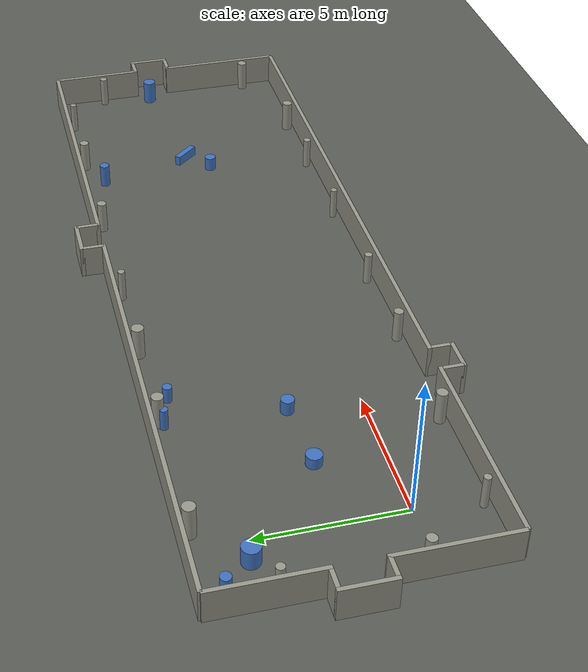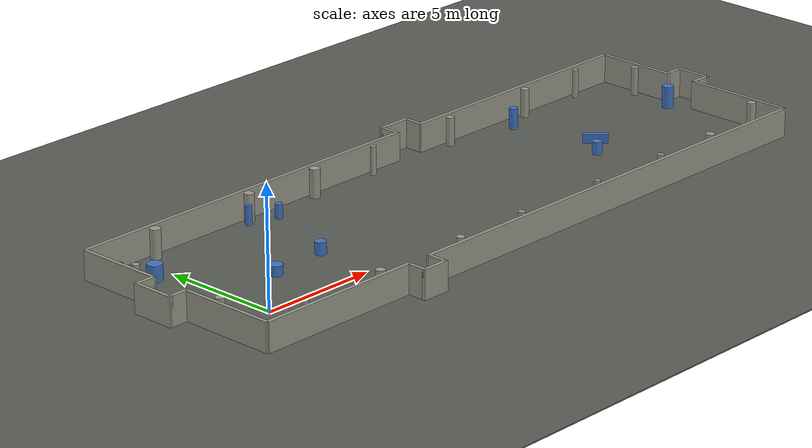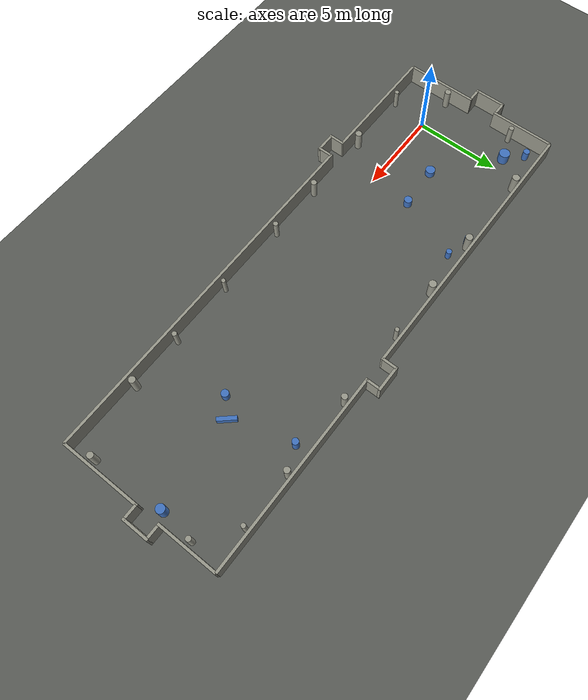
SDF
<sdf version="1.9">
 <world name="default">
  <model name="track_feature">
   <static>true</static>
   <link name="feature_link">
    <collision name="feat_box_10_collision">
     <pose>20.805922 2.577946 0.189972 0.000000 0.000000 2.290240</pose>
     <geometry><box><size>1.032700 0.225423 0.379944</size></box></geometry>
    </collision>
    <visual name="feat_box_10_visual">
     <pose>20.805922 2.577946 0.189972 0.000000 0.000000 2.290240</pose>
     <geometry><box><size>1.032700 0.225423 0.379944</size></box></geometry>
     <material><ambient>0.25 0.45 0.75 1</ambient><diffuse>0.25 0.45 0.75 1</diffuse></material>
    </visual>
    <collision name="feat_cyl_1_collision">
     <pose>5.095583 2.484080 0.261773 0.000000 0.000000 0.000000</pose>
     <geometry><cylinder><radius>0.228690</radius><length>0.523547</length></cylinder></geometry>
    </collision>
    <visual name="feat_cyl_1_visual">
     <pose>5.095583 2.484080 0.261773 0.000000 0.000000 0.000000</pose>
     <geometry><cylinder><radius>0.228690</radius><length>0.523547</length></cylinder></geometry>
     <material><ambient>0.25 0.45 0.75 1</ambient><diffuse>0.25 0.45 0.75 1</diffuse></material>
    </visual>
    <collision name="feat_cyl_2_collision">
     <pose>19.747150 6.061025 0.442172 0.000000 0.000000 0.000000</pose>
     <geometry><cylinder><radius>0.181366</radius><length>0.884344</length></cylinder></geometry>
    </collision>
    <visual name="feat_cyl_2_visual">
     <pose>19.747150 6.061025 0.442172 0.000000 0.000000 0.000000</pose>
     <geometry><cylinder><radius>0.181366</radius><length>0.884344</length></cylinder></geometry>
     <material><ambient>0.25 0.45 0.75 1</ambient><diffuse>0.25 0.45 0.75 1</diffuse></material>
    </visual>
    <collision name="feat_cyl_3_collision">
     <pose>19.917322 1.719447 0.268425 0.000000 0.000000 0.000000</pose>
     <geometry><cylinder><radius>0.210090</radius><length>0.536850</length></cylinder></geometry>
    </collision>
    <visual name="feat_cyl_3_visual">
     <pose>19.917322 1.719447 0.268425 0.000000 0.000000 0.000000</pose>
     <geometry><cylinder><radius>0.210090</radius><length>0.536850</length></cylinder></geometry>
     <material><ambient>0.25 0.45 0.75 1</ambient><diffuse>0.25 0.45 0.75 1</diffuse></material>
    </visual>
    <collision name="feat_cyl_4_collision">
     <pose>-0.795670 5.149357 0.332980 0.000000 0.000000 0.000000</pose>
     <geometry><cylinder><radius>0.311442</radius><length>0.665961</length></cylinder></geometry>
    </collision>
    <visual name="feat_cyl_4_visual">
     <pose>-0.795670 5.149357 0.332980 0.000000 0.000000 0.000000</pose>
     <geometry><cylinder><radius>0.311442</radius><length>0.665961</length></cylinder></geometry>
     <material><ambient>0.25 0.45 0.75 1</ambient><diffuse>0.25 0.45 0.75 1</diffuse></material>
    </visual>
    <collision name="feat_cyl_5_collision">
     <pose>6.516177 6.145721 0.294733 0.000000 0.000000 0.000000</pose>
     <geometry><cylinder><radius>0.156200</radius><length>0.589467</length></cylinder></geometry>
    </collision>
    <visual name="feat_cyl_5_visual">
     <pose>6.516177 6.145721 0.294733 0.000000 0.000000 0.000000</pose>
     <geometry><cylinder><radius>0.156200</radius><length>0.589467</length></cylinder></geometry>
     <material><ambient>0.25 0.45 0.75 1</ambient><diffuse>0.25 0.45 0.75 1</diffuse></material>
    </visual>
    <collision name="feat_cyl_6_collision">
     <pose>2.591725 2.308717 0.205123 0.000000 0.000000 0.000000</pose>
     <geometry><cylinder><radius>0.275531</radius><length>0.410247</length></cylinder></geometry>
    </collision>
    <visual name="feat_cyl_6_visual">
     <pose>2.591725 2.308717 0.205123 0.000000 0.000000 0.000000</pose>
     <geometry><cylinder><radius>0.275531</radius><length>0.410247</length></cylinder></geometry>
     <material><ambient>0.25 0.45 0.75 1</ambient><diffuse>0.25 0.45 0.75 1</diffuse></material>
    </visual>
    <collision name="feat_cyl_7_collision">
     <pose>25.949225 3.094233 0.459818 0.000000 0.000000 0.000000</pose>
     <geometry><cylinder><radius>0.244701</radius><length>0.919635</length></cylinder></geometry>
    </collision>
    <visual name="feat_cyl_7_visual">
     <pose>25.949225 3.094233 0.459818 0.000000 0.000000 0.000000</pose>
     <geometry><cylinder><radius>0.244701</radius><length>0.919635</length></cylinder></geometry>
     <material><ambient>0.25 0.45 0.75 1</ambient><diffuse>0.25 0.45 0.75 1</diffuse></material>
    </visual>
    <collision name="feat_cyl_8_collision">
     <pose>-1.677320 6.098490 0.323803 0.000000 0.000000 0.000000</pose>
     <geometry><cylinder><radius>0.183685</radius><length>0.647605</length></cylinder></geometry>
    </collision>
    <visual name="feat_cyl_8_visual">
     <pose>-1.677320 6.098490 0.323803 0.000000 0.000000 0.000000</pose>
     <geometry><cylinder><radius>0.183685</radius><length>0.647605</length></cylinder></geometry>
     <material><ambient>0.25 0.45 0.75 1</ambient><diffuse>0.25 0.45 0.75 1</diffuse></material>
    </visual>
    <collision name="feat_cyl_9_collision">
     <pose>5.265680 6.496710 0.399092 0.000000 0.000000 0.000000</pose>
     <geometry><cylinder><radius>0.138124</radius><length>0.798185</length></cylinder></geometry>
    </collision>
    <visual name="feat_cyl_9_visual">
     <pose>5.265680 6.496710 0.399092 0.000000 0.000000 0.000000</pose>
     <geometry><cylinder><radius>0.138124</radius><length>0.798185</length></cylinder></geometry>
     <material><ambient>0.25 0.45 0.75 1</ambient><diffuse>0.25 0.45 0.75 1</diffuse></material>
    </visual>
   </link>
  </model>
  <model name="track_ground">
   <static>true</static>
   <link name="ground_link">
    <collision name="ground_collision">
     <pose>12.000000 2.250000 -0.025000 0.000000 0.000000 0.000000</pose>
     <geometry><box><size>80.000000 80.000000 0.050000</size></box></geometry>
     <surface>
      <friction><ode><mu>1.2</mu><mu2>1.2</mu2></ode></friction>
      <contact><ode><kp>100000.0</kp><kd>10.0</kd></ode></contact>
     </surface>
    </collision>
    <visual name="ground_visual">
     <pose>12.000000 2.250000 -0.025000 0.000000 0.000000 0.000000</pose>
     <geometry><box><size>80.000000 80.000000 0.050000</size></box></geometry>
     <material><ambient>0.35 0.36 0.34 1</ambient><diffuse>0.35 0.36 0.34 1</diffuse></material>
    </visual>
   </link>
  </model>
  <model name="track_room">
   <static>true</static>
   <link name="room_link">
    <collision name="hall_0_0_collision">
     <pose>1.104349 -2.500000 0.600000 0.000000 0.000000 0.000000</pose>
     <geometry><box><size>7.208698 0.150000 1.200000</size></box></geometry>
    </collision>
    <visual name="hall_0_0_visual">
     <pose>1.104349 -2.500000 0.600000 0.000000 0.000000 0.000000</pose>
     <geometry><box><size>7.208698 0.150000 1.200000</size></box></geometry>
     <material><ambient>0.6 0.6 0.55 1</ambient><diffuse>0.6 0.6 0.55 1</diffuse></material>
    </visual>
    <collision name="hall_0_81_collision">
     <pose>16.066658 -2.500000 0.600000 0.000000 0.000000 0.000000</pose>
     <geometry><box><size>20.866685 0.150000 1.200000</size></box></geometry>
    </collision>
    <visual name="hall_0_81_visual">
     <pose>16.066658 -2.500000 0.600000 0.000000 0.000000 0.000000</pose>
     <geometry><box><size>20.866685 0.150000 1.200000</size></box></geometry>
     <material><ambient>0.6 0.6 0.55 1</ambient><diffuse>0.6 0.6 0.55 1</diffuse></material>
    </visual>
    <collision name="hall_niche_0_collision">
     <pose>5.171007 -3.300000 0.600000 0.000000 0.000000 0.000000</pose>
     <geometry><box><size>1.224618 0.150000 1.200000</size></box></geometry>
    </collision>
    <visual name="hall_niche_0_visual">
     <pose>5.171007 -3.300000 0.600000 0.000000 0.000000 0.000000</pose>
     <geometry><box><size>1.224618 0.150000 1.200000</size></box></geometry>
     <material><ambient>0.6 0.6 0.55 1</ambient><diffuse>0.6 0.6 0.55 1</diffuse></material>
    </visual>
    <collision name="hall_jamb_0_-1_collision">
     <pose>4.633698 -2.900000 0.600000 0.000000 0.000000 0.000000</pose>
     <geometry><box><size>0.150000 0.800000 1.200000</size></box></geometry>
    </collision>
    <visual name="hall_jamb_0_-1_visual">
     <pose>4.633698 -2.900000 0.600000 0.000000 0.000000 0.000000</pose>
     <geometry><box><size>0.150000 0.800000 1.200000</size></box></geometry>
     <material><ambient>0.6 0.6 0.55 1</ambient><diffuse>0.6 0.6 0.55 1</diffuse></material>
    </visual>
    <collision name="hall_jamb_0_1_collision">
     <pose>5.708315 -2.900000 0.600000 0.000000 0.000000 0.000000</pose>
     <geometry><box><size>0.150000 0.800000 1.200000</size></box></geometry>
    </collision>
    <visual name="hall_jamb_0_1_visual">
     <pose>5.708315 -2.900000 0.600000 0.000000 0.000000 0.000000</pose>
     <geometry><box><size>0.150000 0.800000 1.200000</size></box></geometry>
     <material><ambient>0.6 0.6 0.55 1</ambient><diffuse>0.6 0.6 0.55 1</diffuse></material>
    </visual>
    <collision name="hall_1_0_collision">
     <pose>26.500000 -0.127356 0.600000 0.000000 0.000000 1.570796</pose>
     <geometry><box><size>4.745288 0.150000 1.200000</size></box></geometry>
    </collision>
    <visual name="hall_1_0_visual">
     <pose>26.500000 -0.127356 0.600000 0.000000 0.000000 1.570796</pose>
     <geometry><box><size>4.745288 0.150000 1.200000</size></box></geometry>
     <material><ambient>0.6 0.6 0.55 1</ambient><diffuse>0.6 0.6 0.55 1</diffuse></material>
    </visual>
    <collision name="hall_1_60_collision">
     <pose>26.500000 5.256696 0.600000 0.000000 0.000000 1.570796</pose>
     <geometry><box><size>3.486608 0.150000 1.200000</size></box></geometry>
    </collision>
    <visual name="hall_1_60_visual">
     <pose>26.500000 5.256696 0.600000 0.000000 0.000000 1.570796</pose>
     <geometry><box><size>3.486608 0.150000 1.200000</size></box></geometry>
     <material><ambient>0.6 0.6 0.55 1</ambient><diffuse>0.6 0.6 0.55 1</diffuse></material>
    </visual>
    <collision name="hall_niche_1_collision">
     <pose>27.300000 2.879340 0.600000 0.000000 0.000000 1.570796</pose>
     <geometry><box><size>1.568104 0.150000 1.200000</size></box></geometry>
    </collision>
    <visual name="hall_niche_1_visual">
     <pose>27.300000 2.879340 0.600000 0.000000 0.000000 1.570796</pose>
     <geometry><box><size>1.568104 0.150000 1.200000</size></box></geometry>
     <material><ambient>0.6 0.6 0.55 1</ambient><diffuse>0.6 0.6 0.55 1</diffuse></material>
    </visual>
    <collision name="hall_jamb_1_-1_collision">
     <pose>26.900000 2.170288 0.600000 0.000000 0.000000 1.570796</pose>
     <geometry><box><size>0.150000 0.800000 1.200000</size></box></geometry>
    </collision>
    <visual name="hall_jamb_1_-1_visual">
     <pose>26.900000 2.170288 0.600000 0.000000 0.000000 1.570796</pose>
     <geometry><box><size>0.150000 0.800000 1.200000</size></box></geometry>
     <material><ambient>0.6 0.6 0.55 1</ambient><diffuse>0.6 0.6 0.55 1</diffuse></material>
    </visual>
    <collision name="hall_jamb_1_1_collision">
     <pose>26.900000 3.588392 0.600000 0.000000 0.000000 1.570796</pose>
     <geometry><box><size>0.150000 0.800000 1.200000</size></box></geometry>
    </collision>
    <visual name="hall_jamb_1_1_visual">
     <pose>26.900000 3.588392 0.600000 0.000000 0.000000 1.570796</pose>
     <geometry><box><size>0.150000 0.800000 1.200000</size></box></geometry>
     <material><ambient>0.6 0.6 0.55 1</ambient><diffuse>0.6 0.6 0.55 1</diffuse></material>
    </visual>
    <collision name="hall_2_0_collision">
     <pose>20.854480 7.000000 0.600000 0.000000 0.000000 3.141593</pose>
     <geometry><box><size>11.291040 0.150000 1.200000</size></box></geometry>
    </collision>
    <visual name="hall_2_0_visual">
     <pose>20.854480 7.000000 0.600000 0.000000 0.000000 3.141593</pose>
     <geometry><box><size>11.291040 0.150000 1.200000</size></box></geometry>
     <material><ambient>0.6 0.6 0.55 1</ambient><diffuse>0.6 0.6 0.55 1</diffuse></material>
    </visual>
    <collision name="hall_2_125_collision">
     <pose>5.748405 7.000000 0.600000 0.000000 0.000000 3.141593</pose>
     <geometry><box><size>16.496811 0.150000 1.200000</size></box></geometry>
    </collision>
    <visual name="hall_2_125_visual">
     <pose>5.748405 7.000000 0.600000 0.000000 0.000000 3.141593</pose>
     <geometry><box><size>16.496811 0.150000 1.200000</size></box></geometry>
     <material><ambient>0.6 0.6 0.55 1</ambient><diffuse>0.6 0.6 0.55 1</diffuse></material>
    </visual>
    <collision name="hall_niche_2_collision">
     <pose>14.602885 7.800000 0.600000 0.000000 0.000000 3.141593</pose>
     <geometry><box><size>1.512149 0.150000 1.200000</size></box></geometry>
    </collision>
    <visual name="hall_niche_2_visual">
     <pose>14.602885 7.800000 0.600000 0.000000 0.000000 3.141593</pose>
     <geometry><box><size>1.512149 0.150000 1.200000</size></box></geometry>
     <material><ambient>0.6 0.6 0.55 1</ambient><diffuse>0.6 0.6 0.55 1</diffuse></material>
    </visual>
    <collision name="hall_jamb_2_-1_collision">
     <pose>15.283960 7.400000 0.600000 0.000000 0.000000 3.141593</pose>
     <geometry><box><size>0.150000 0.800000 1.200000</size></box></geometry>
    </collision>
    <visual name="hall_jamb_2_-1_visual">
     <pose>15.283960 7.400000 0.600000 0.000000 0.000000 3.141593</pose>
     <geometry><box><size>0.150000 0.800000 1.200000</size></box></geometry>
     <material><ambient>0.6 0.6 0.55 1</ambient><diffuse>0.6 0.6 0.55 1</diffuse></material>
    </visual>
    <collision name="hall_jamb_2_1_collision">
     <pose>13.921811 7.400000 0.600000 0.000000 0.000000 3.141593</pose>
     <geometry><box><size>0.150000 0.800000 1.200000</size></box></geometry>
    </collision>
    <visual name="hall_jamb_2_1_visual">
     <pose>13.921811 7.400000 0.600000 0.000000 0.000000 3.141593</pose>
     <geometry><box><size>0.150000 0.800000 1.200000</size></box></geometry>
     <material><ambient>0.6 0.6 0.55 1</ambient><diffuse>0.6 0.6 0.55 1</diffuse></material>
    </visual>
    <collision name="hall_3_0_collision">
     <pose>-2.500000 5.130584 0.600000 0.000000 0.000000 -1.570796</pose>
     <geometry><box><size>3.738832 0.150000 1.200000</size></box></geometry>
    </collision>
    <visual name="hall_3_0_visual">
     <pose>-2.500000 5.130584 0.600000 0.000000 0.000000 -1.570796</pose>
     <geometry><box><size>3.738832 0.150000 1.200000</size></box></geometry>
     <material><ambient>0.6 0.6 0.55 1</ambient><diffuse>0.6 0.6 0.55 1</diffuse></material>
    </visual>
    <collision name="hall_3_53_collision">
     <pose>-2.500000 -0.402749 0.600000 0.000000 0.000000 -1.570796</pose>
     <geometry><box><size>4.194502 0.150000 1.200000</size></box></geometry>
    </collision>
    <visual name="hall_3_53_visual">
     <pose>-2.500000 -0.402749 0.600000 0.000000 0.000000 -1.570796</pose>
     <geometry><box><size>4.194502 0.150000 1.200000</size></box></geometry>
     <material><ambient>0.6 0.6 0.55 1</ambient><diffuse>0.6 0.6 0.55 1</diffuse></material>
    </visual>
    <collision name="hall_niche_3_collision">
     <pose>-3.300000 2.477835 0.600000 0.000000 0.000000 -1.570796</pose>
     <geometry><box><size>1.866666 0.150000 1.200000</size></box></geometry>
    </collision>
    <visual name="hall_niche_3_visual">
     <pose>-3.300000 2.477835 0.600000 0.000000 0.000000 -1.570796</pose>
     <geometry><box><size>1.866666 0.150000 1.200000</size></box></geometry>
     <material><ambient>0.6 0.6 0.55 1</ambient><diffuse>0.6 0.6 0.55 1</diffuse></material>
    </visual>
    <collision name="hall_jamb_3_-1_collision">
     <pose>-2.900000 3.336168 0.600000 0.000000 0.000000 -1.570796</pose>
     <geometry><box><size>0.150000 0.800000 1.200000</size></box></geometry>
    </collision>
    <visual name="hall_jamb_3_-1_visual">
     <pose>-2.900000 3.336168 0.600000 0.000000 0.000000 -1.570796</pose>
     <geometry><box><size>0.150000 0.800000 1.200000</size></box></geometry>
     <material><ambient>0.6 0.6 0.55 1</ambient><diffuse>0.6 0.6 0.55 1</diffuse></material>
    </visual>
    <collision name="hall_jamb_3_1_collision">
     <pose>-2.900000 1.619502 0.600000 0.000000 0.000000 -1.570796</pose>
     <geometry><box><size>0.150000 0.800000 1.200000</size></box></geometry>
    </collision>
    <visual name="hall_jamb_3_1_visual">
     <pose>-2.900000 1.619502 0.600000 0.000000 0.000000 -1.570796</pose>
     <geometry><box><size>0.150000 0.800000 1.200000</size></box></geometry>
     <material><ambient>0.6 0.6 0.55 1</ambient><diffuse>0.6 0.6 0.55 1</diffuse></material>
    </visual>
    <collision name="column_0_22_collision">
     <pose>-0.297476 -2.150000 0.600000 0.000000 0.000000 0.000000</pose>
     <geometry><cylinder><radius>0.125315</radius><length>1.200000</length></cylinder></geometry>
    </collision>
    <visual name="column_0_22_visual">
     <pose>-0.297476 -2.150000 0.600000 0.000000 0.000000 0.000000</pose>
     <geometry><cylinder><radius>0.125315</radius><length>1.200000</length></cylinder></geometry>
     <material><ambient>0.6 0.6 0.55 1</ambient><diffuse>0.6 0.6 0.55 1</diffuse></material>
    </visual>
    <collision name="column_0_60_collision">
     <pose>3.524388 -2.150000 0.600000 0.000000 0.000000 0.000000</pose>
     <geometry><cylinder><radius>0.190937</radius><length>1.200000</length></cylinder></geometry>
    </collision>
    <visual name="column_0_60_visual">
     <pose>3.524388 -2.150000 0.600000 0.000000 0.000000 0.000000</pose>
     <geometry><cylinder><radius>0.190937</radius><length>1.200000</length></cylinder></geometry>
     <material><ambient>0.6 0.6 0.55 1</ambient><diffuse>0.6 0.6 0.55 1</diffuse></material>
    </visual>
    <collision name="column_0_102_collision">
     <pose>7.755703 -2.150000 0.600000 0.000000 0.000000 0.000000</pose>
     <geometry><cylinder><radius>0.166855</radius><length>1.200000</length></cylinder></geometry>
    </collision>
    <visual name="column_0_102_visual">
     <pose>7.755703 -2.150000 0.600000 0.000000 0.000000 0.000000</pose>
     <geometry><cylinder><radius>0.166855</radius><length>1.200000</length></cylinder></geometry>
     <material><ambient>0.6 0.6 0.55 1</ambient><diffuse>0.6 0.6 0.55 1</diffuse></material>
    </visual>
    <collision name="column_0_136_collision">
     <pose>11.115146 -2.150000 0.600000 0.000000 0.000000 0.000000</pose>
     <geometry><cylinder><radius>0.138892</radius><length>1.200000</length></cylinder></geometry>
    </collision>
    <visual name="column_0_136_visual">
     <pose>11.115146 -2.150000 0.600000 0.000000 0.000000 0.000000</pose>
     <geometry><cylinder><radius>0.138892</radius><length>1.200000</length></cylinder></geometry>
     <material><ambient>0.6 0.6 0.55 1</ambient><diffuse>0.6 0.6 0.55 1</diffuse></material>
    </visual>
    <collision name="column_0_179_collision">
     <pose>15.438039 -2.150000 0.600000 0.000000 0.000000 0.000000</pose>
     <geometry><cylinder><radius>0.120638</radius><length>1.200000</length></cylinder></geometry>
    </collision>
    <visual name="column_0_179_visual">
     <pose>15.438039 -2.150000 0.600000 0.000000 0.000000 0.000000</pose>
     <geometry><cylinder><radius>0.120638</radius><length>1.200000</length></cylinder></geometry>
     <material><ambient>0.6 0.6 0.55 1</ambient><diffuse>0.6 0.6 0.55 1</diffuse></material>
    </visual>
    <collision name="column_0_217_collision">
     <pose>19.205895 -2.150000 0.600000 0.000000 0.000000 0.000000</pose>
     <geometry><cylinder><radius>0.136682</radius><length>1.200000</length></cylinder></geometry>
    </collision>
    <visual name="column_0_217_visual">
     <pose>19.205895 -2.150000 0.600000 0.000000 0.000000 0.000000</pose>
     <geometry><cylinder><radius>0.136682</radius><length>1.200000</length></cylinder></geometry>
     <material><ambient>0.6 0.6 0.55 1</ambient><diffuse>0.6 0.6 0.55 1</diffuse></material>
    </visual>
    <collision name="column_0_247_collision">
     <pose>22.267137 -2.150000 0.600000 0.000000 0.000000 0.000000</pose>
     <geometry><cylinder><radius>0.191714</radius><length>1.200000</length></cylinder></geometry>
    </collision>
    <visual name="column_0_247_visual">
     <pose>22.267137 -2.150000 0.600000 0.000000 0.000000 0.000000</pose>
     <geometry><cylinder><radius>0.191714</radius><length>1.200000</length></cylinder></geometry>
     <material><ambient>0.6 0.6 0.55 1</ambient><diffuse>0.6 0.6 0.55 1</diffuse></material>
    </visual>
    <collision name="column_1_13_collision">
     <pose>26.150000 -1.119888 0.600000 0.000000 0.000000 0.000000</pose>
     <geometry><cylinder><radius>0.180215</radius><length>1.200000</length></cylinder></geometry>
    </collision>
    <visual name="column_1_13_visual">
     <pose>26.150000 -1.119888 0.600000 0.000000 0.000000 0.000000</pose>
     <geometry><cylinder><radius>0.180215</radius><length>1.200000</length></cylinder></geometry>
     <material><ambient>0.6 0.6 0.55 1</ambient><diffuse>0.6 0.6 0.55 1</diffuse></material>
    </visual>
    <collision name="column_1_75_collision">
     <pose>26.150000 5.062594 0.600000 0.000000 0.000000 0.000000</pose>
     <geometry><cylinder><radius>0.147237</radius><length>1.200000</length></cylinder></geometry>
    </collision>
    <visual name="column_1_75_visual">
     <pose>26.150000 5.062594 0.600000 0.000000 0.000000 0.000000</pose>
     <geometry><cylinder><radius>0.147237</radius><length>1.200000</length></cylinder></geometry>
     <material><ambient>0.6 0.6 0.55 1</ambient><diffuse>0.6 0.6 0.55 1</diffuse></material>
    </visual>
    <collision name="column_2_22_collision">
     <pose>24.224226 6.650000 0.600000 0.000000 0.000000 0.000000</pose>
     <geometry><cylinder><radius>0.124447</radius><length>1.200000</length></cylinder></geometry>
    </collision>
    <visual name="column_2_22_visual">
     <pose>24.224226 6.650000 0.600000 0.000000 0.000000 0.000000</pose>
     <geometry><cylinder><radius>0.124447</radius><length>1.200000</length></cylinder></geometry>
     <material><ambient>0.6 0.6 0.55 1</ambient><diffuse>0.6 0.6 0.55 1</diffuse></material>
    </visual>
    <collision name="column_2_54_collision">
     <pose>21.094903 6.650000 0.600000 0.000000 0.000000 0.000000</pose>
     <geometry><cylinder><radius>0.172333</radius><length>1.200000</length></cylinder></geometry>
    </collision>
    <visual name="column_2_54_visual">
     <pose>21.094903 6.650000 0.600000 0.000000 0.000000 0.000000</pose>
     <geometry><cylinder><radius>0.172333</radius><length>1.200000</length></cylinder></geometry>
     <material><ambient>0.6 0.6 0.55 1</ambient><diffuse>0.6 0.6 0.55 1</diffuse></material>
    </visual>
    <collision name="column_2_98_collision">
     <pose>16.626565 6.650000 0.600000 0.000000 0.000000 0.000000</pose>
     <geometry><cylinder><radius>0.169479</radius><length>1.200000</length></cylinder></geometry>
    </collision>
    <visual name="column_2_98_visual">
     <pose>16.626565 6.650000 0.600000 0.000000 0.000000 0.000000</pose>
     <geometry><cylinder><radius>0.169479</radius><length>1.200000</length></cylinder></geometry>
     <material><ambient>0.6 0.6 0.55 1</ambient><diffuse>0.6 0.6 0.55 1</diffuse></material>
    </visual>
    <collision name="column_2_142_collision">
     <pose>12.201430 6.650000 0.600000 0.000000 0.000000 0.000000</pose>
     <geometry><cylinder><radius>0.123446</radius><length>1.200000</length></cylinder></geometry>
    </collision>
    <visual name="column_2_142_visual">
     <pose>12.201430 6.650000 0.600000 0.000000 0.000000 0.000000</pose>
     <geometry><cylinder><radius>0.123446</radius><length>1.200000</length></cylinder></geometry>
     <material><ambient>0.6 0.6 0.55 1</ambient><diffuse>0.6 0.6 0.55 1</diffuse></material>
    </visual>
    <collision name="column_2_175_collision">
     <pose>8.965460 6.650000 0.600000 0.000000 0.000000 0.000000</pose>
     <geometry><cylinder><radius>0.213693</radius><length>1.200000</length></cylinder></geometry>
    </collision>
    <visual name="column_2_175_visual">
     <pose>8.965460 6.650000 0.600000 0.000000 0.000000 0.000000</pose>
     <geometry><cylinder><radius>0.213693</radius><length>1.200000</length></cylinder></geometry>
     <material><ambient>0.6 0.6 0.55 1</ambient><diffuse>0.6 0.6 0.55 1</diffuse></material>
    </visual>
    <collision name="column_2_210_collision">
     <pose>5.453627 6.650000 0.600000 0.000000 0.000000 0.000000</pose>
     <geometry><cylinder><radius>0.202166</radius><length>1.200000</length></cylinder></geometry>
    </collision>
    <visual name="column_2_210_visual">
     <pose>5.453627 6.650000 0.600000 0.000000 0.000000 0.000000</pose>
     <geometry><cylinder><radius>0.202166</radius><length>1.200000</length></cylinder></geometry>
     <material><ambient>0.6 0.6 0.55 1</ambient><diffuse>0.6 0.6 0.55 1</diffuse></material>
    </visual>
    <collision name="column_2_258_collision">
     <pose>0.636371 6.650000 0.600000 0.000000 0.000000 0.000000</pose>
     <geometry><cylinder><radius>0.217454</radius><length>1.200000</length></cylinder></geometry>
    </collision>
    <visual name="column_2_258_visual">
     <pose>0.636371 6.650000 0.600000 0.000000 0.000000 0.000000</pose>
     <geometry><cylinder><radius>0.217454</radius><length>1.200000</length></cylinder></geometry>
     <material><ambient>0.6 0.6 0.55 1</ambient><diffuse>0.6 0.6 0.55 1</diffuse></material>
    </visual>
    <collision name="column_3_23_collision">
     <pose>-2.150000 4.655249 0.600000 0.000000 0.000000 0.000000</pose>
     <geometry><cylinder><radius>0.147045</radius><length>1.200000</length></cylinder></geometry>
    </collision>
    <visual name="column_3_23_visual">
     <pose>-2.150000 4.655249 0.600000 0.000000 0.000000 0.000000</pose>
     <geometry><cylinder><radius>0.147045</radius><length>1.200000</length></cylinder></geometry>
     <material><ambient>0.6 0.6 0.55 1</ambient><diffuse>0.6 0.6 0.55 1</diffuse></material>
    </visual>
    <collision name="column_3_67_collision">
     <pose>-2.150000 0.257397 0.600000 0.000000 0.000000 0.000000</pose>
     <geometry><cylinder><radius>0.178024</radius><length>1.200000</length></cylinder></geometry>
    </collision>
    <visual name="column_3_67_visual">
     <pose>-2.150000 0.257397 0.600000 0.000000 0.000000 0.000000</pose>
     <geometry><cylinder><radius>0.178024</radius><length>1.200000</length></cylinder></geometry>
     <material><ambient>0.6 0.6 0.55 1</ambient><diffuse>0.6 0.6 0.55 1</diffuse></material>
    </visual>
   </link>
  </model>
 </world>
</sdf>
